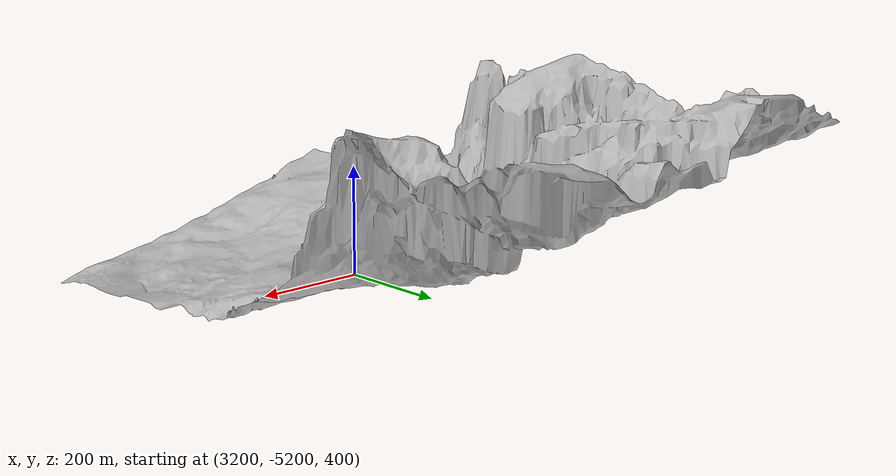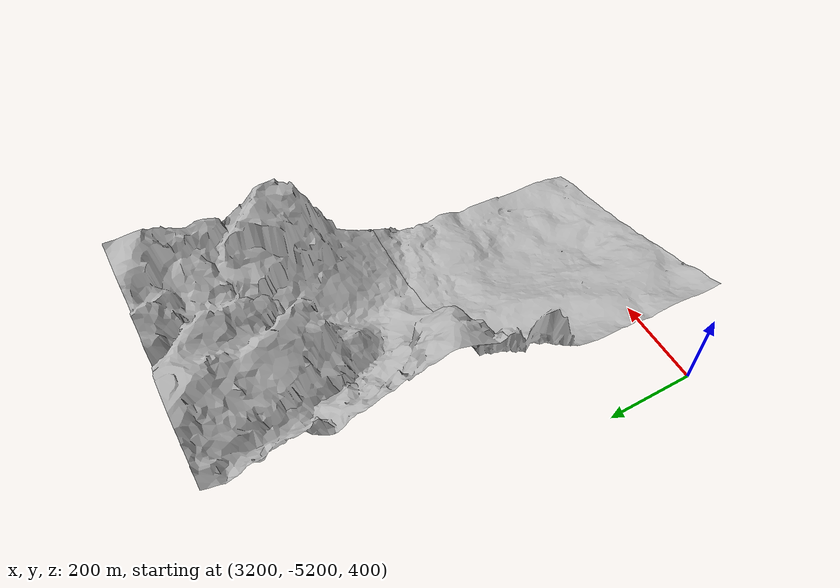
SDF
<?xml version="1.0"?>
<sdf version="1.8">
	<model name="singletile">
		<pose>3500 -4500 0 0 0 0</pose>
		<static>true</static>
		<link name="link">
			<visual name="visual">
				<geometry>
					<mesh>
					<uri>meshes/singletile.obj</uri>
					</mesh>
				</geometry>
			</visual>
			<collision name="collision">
				<geometry>
					<mesh>
						<uri>meshes/singletile.obj</uri>
					</mesh>
				</geometry>
			</collision>
		</link>
		<link name="southtile">
			<pose>0 -500 0 0 0 0</pose>
			<visual name="visual">
				<geometry>
					<mesh>
					<uri>meshes/southtile.obj</uri>
					</mesh>
				</geometry>
			</visual>
			<collision name="collision">
				<geometry>
					<mesh>
						<uri>meshes/southtile.obj</uri>
					</mesh>
				</geometry>
			</collision>
		</link>
	</model>
</sdf>
